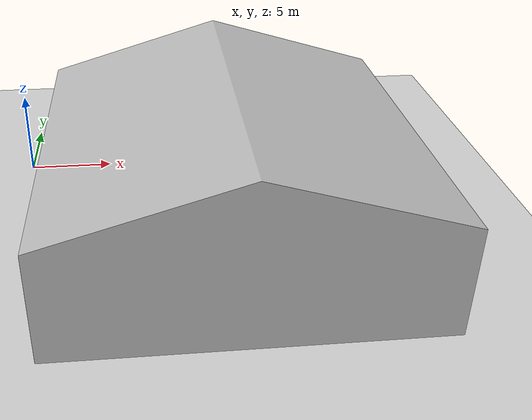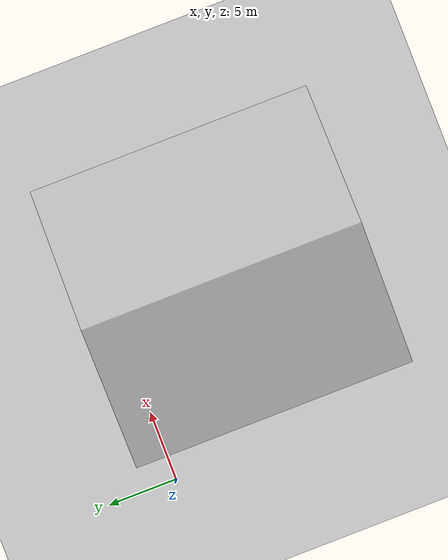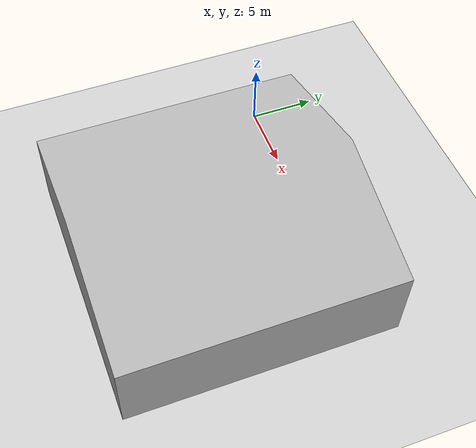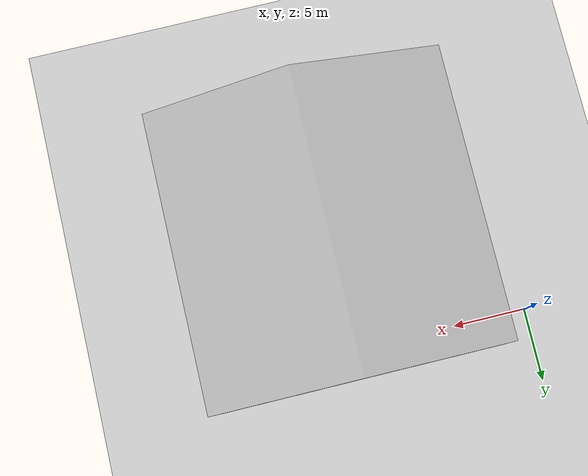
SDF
<?xml version="1.0" ?>
<sdf version="1.4">
  <!-- We use a custom world for the rrbot so that the camera angle is launched correctly -->

  <world name="default">
    <include>
      <uri>model://ground_plane</uri>
    </include>

    <!-- Global light source -->
    <include>
      <uri>model://sun</uri>
    </include>

    <include>
      <pose>2 2 0 1.57 0 0</pose>
      <uri>model://warehouse</uri>
    </include>
  </world>
</sdf>

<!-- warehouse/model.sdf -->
<sdf version="1.6">
  <model name="warehouse">
    <static>true</static>
    <link name="link">
      <collision name="collision">
        <geometry>
          <mesh>
            <uri>model:///warehouse/meshes/warehouse.stl</uri>
            <scale>0.001 0.001 0.001</scale>
          </mesh>
        </geometry>
      </collision>
      <visual name="visual">
        <geometry>
          <mesh>
            <uri>model:///warehouse/meshes/warehouse.stl</uri>
            <scale>0.001 0.001 0.001</scale>
          </mesh>
        </geometry>
      </visual>
    </link>
  </model>
</sdf>
